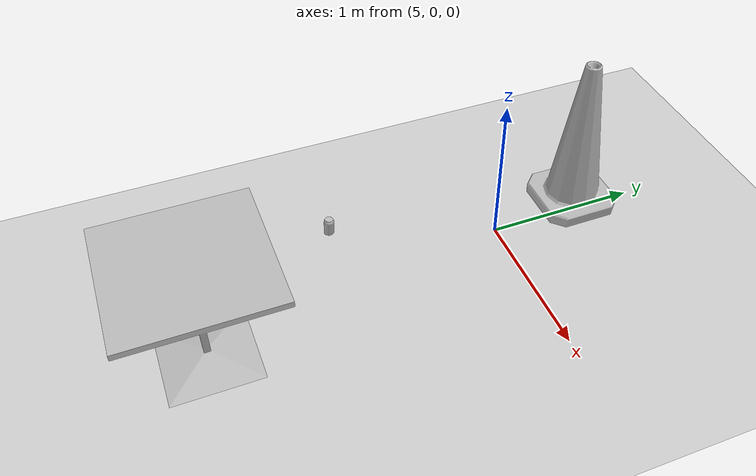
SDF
<sdf version="1.7">
 <world name="default">
  <light name="sun" type="directional">
   <pose>0 0 10 0 -0 0</pose>
   <diffuse>0.8 0.8 0.8 1</diffuse>
   <specular>0.2 0.2 0.2 1</specular>
   <attenuation>
    <range>1000</range>
    <constant>0.9</constant>
    <linear>0.01</linear>
    <quadratic>0.001</quadratic>
   </attenuation>
   <direction>-0.5 0.1 -0.9</direction>
   <spot><inner_angle>0</inner_angle><outer_angle>0</outer_angle><falloff>0</falloff></spot>
  </light>
  <model name="ground_plane">
   <static>1</static>
   <link name="link">
    <collision name="collision">
     <geometry><plane><normal>0 0 1</normal><size>100 100</size></plane></geometry>
     <surface>
      <contact><collide_bitmask>65535</collide_bitmask></contact>
      <friction><ode><mu>100</mu><mu2>50</mu2></ode></friction>
     </surface>
    </collision>
    <visual name="visual">
     <cast_shadows>0</cast_shadows>
     <geometry><plane><normal>0 0 1</normal><size>100 100</size></plane></geometry>
     <material>
      <script><uri>file://media/materials/scripts/gazebo.material</uri><name>Gazebo/Grey</name></script>
     </material>
    </visual>
   </link>
  </model>
  <gravity>0 0 -9.8</gravity>
  <magnetic_field>6e-06 2.3e-05 -4.2e-05</magnetic_field>
  <atmosphere type="adiabatic"/>
  <physics type="ode">
   <max_step_size>0.001</max_step_size>
   <real_time_factor>1</real_time_factor>
   <real_time_update_rate>1000</real_time_update_rate>
  </physics>
  <scene><ambient>0.4 0.4 0.4 1</ambient><background>0.7 0.7 0.7 1</background><shadows>1</shadows></scene>
  <spherical_coordinates>
   <surface_model>EARTH_WGS84</surface_model>
   <latitude_deg>0</latitude_deg>
   <longitude_deg>0</longitude_deg>
   <elevation>0</elevation>
   <heading_deg>0</heading_deg>
  </spherical_coordinates>
  <model name="Construction Cone">
   <link name="link">
    <collision name="collision">
     <geometry>
      <mesh><scale>10 10 10</scale><uri>model://construction_cone/meshes/construction_cone.dae</uri></mesh>
     </geometry>
    </collision>
    <visual name="visual">
     <geometry>
      <mesh><scale>10 10 10</scale><uri>model://construction_cone/meshes/construction_cone.dae</uri></mesh>
     </geometry>
    </visual>
    <inertial>
     <inertia><ixx>1</ixx><ixy>0</ixy><ixz>0</ixz><iyy>1</iyy><iyz>0</iyz><izz>1</izz></inertia>
     <mass>1</mass>
    </inertial>
   </link>
   <pose>4.90199 0.627559 -0 0 -0 0</pose>
  </model>
  <model name="cafe_table">
   <static>1</static>
   <link name="link">
    <collision name="surface">
     <pose>0 0 0.755 0 -0 0</pose>
     <geometry><box><size>0.913 0.913 0.04</size></box></geometry>
    </collision>
    <collision name="column">
     <pose>0 0 0.37 0 -0 0</pose>
     <geometry><box><size>0.042 0.042 0.74</size></box></geometry>
    </collision>
    <collision name="base">
     <pose>0 0 0.02 0 -0 0</pose>
     <geometry><box><size>0.56 0.56 0.04</size></box></geometry>
    </collision>
    <visual name="visual">
     <geometry><mesh><uri>model://cafe_table/meshes/cafe_table.dae</uri></mesh></geometry>
    </visual>
   </link>
   <pose>5.31785 -2.00334 0 0 -0 0</pose>
  </model>
  <model name="coke_can">
   <link name="link">
    <inertial>
     <pose>0 0 0.06 0 -0 0</pose>
     <mass>0.39</mass>
     <inertia>
      <ixx>0.00055575</ixx>
      <ixy>0</ixy>
      <ixz>0</ixz>
      <iyy>0.00055575</iyy>
      <iyz>0</iyz>
      <izz>0.0001755</izz>
     </inertia>
    </inertial>
    <collision name="collision">
     <pose>0.003937 0.004724 -0.18 0 -0 0</pose>
     <geometry><mesh><uri>model://coke_can/meshes/coke_can.dae</uri></mesh></geometry>
     <surface>
      <friction><ode><mu>1</mu><mu2>1</mu2></ode></friction>
      <contact><ode><kp>1e+07</kp><kd>1</kd><min_depth>0.001</min_depth><max_vel>0.1</max_vel></ode></contact>
     </surface>
    </collision>
    <visual name="visual">
     <pose>0.003937 0.004724 -0.18 0 -0 0</pose>
     <geometry><mesh><uri>model://coke_can/meshes/coke_can.dae</uri></mesh></geometry>
    </visual>
   </link>
   <pose>4.61997 -1.03795 -0.002748 -0.060409 0.004074 -0.000539</pose>
  </model>
 </world>
</sdf>
